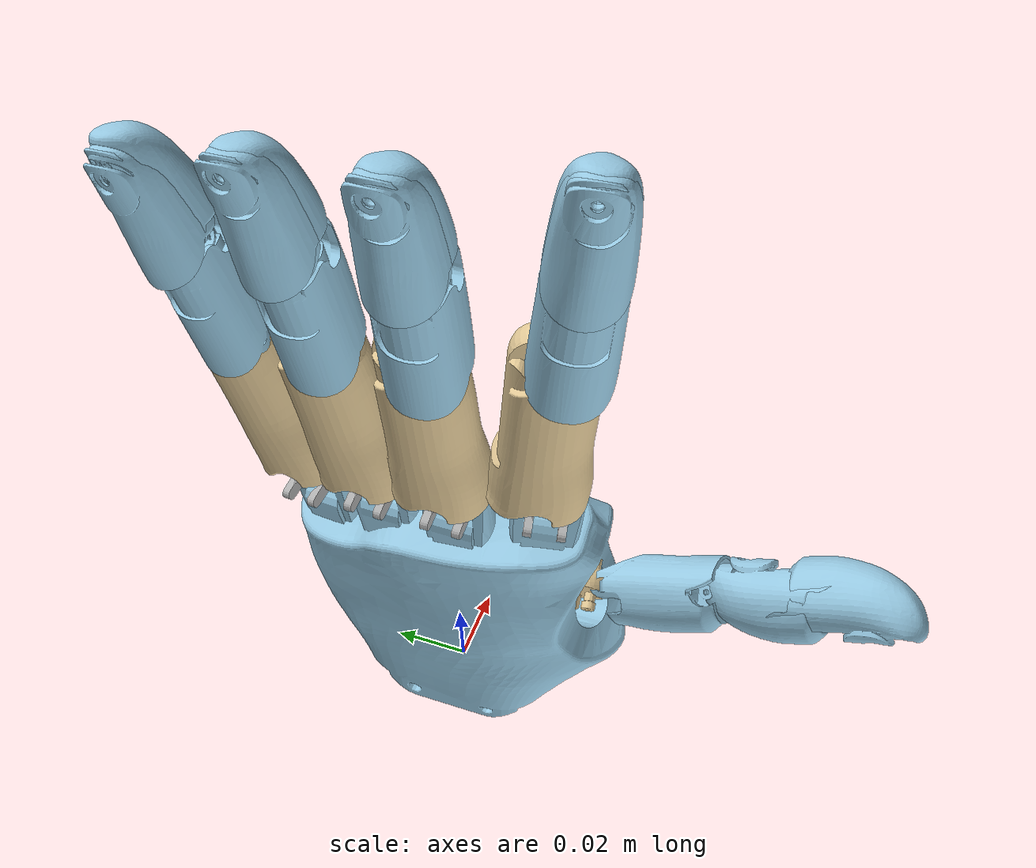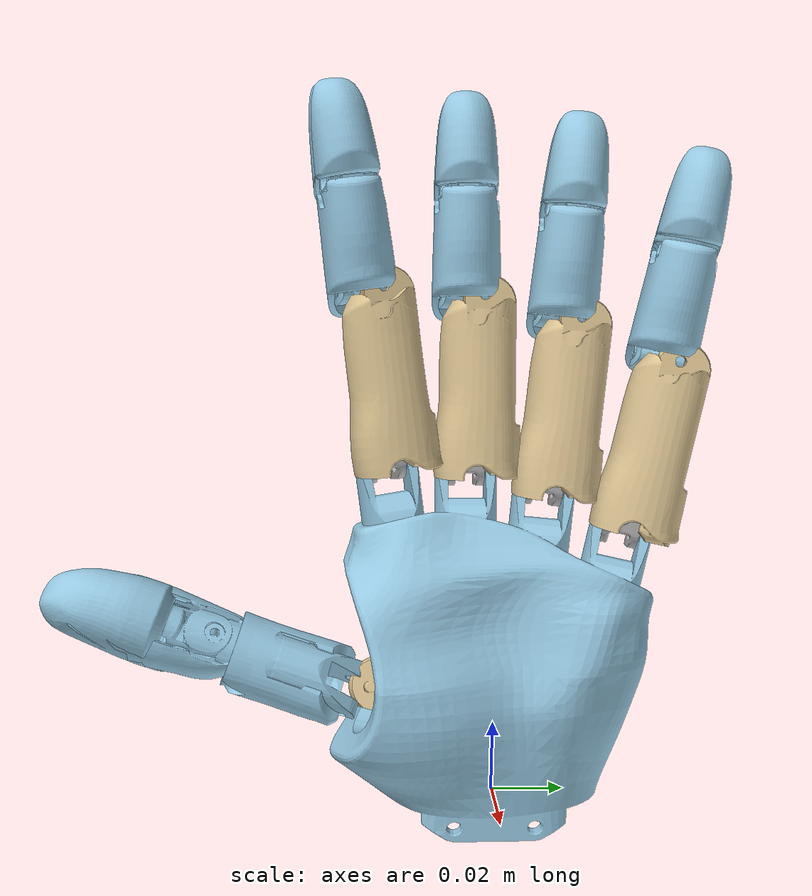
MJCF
<mujoco model="wujihand-left">
  <compiler angle="radian" meshdir="meshes/left/" />

  <option jacobian="sparse"
          integrator="RK4"
          timestep="0.002"
          solver="Newton"
          iterations="50"
          tolerance="1e-10"
          impratio="10"/>

  <default>
    <joint armature="0.005" damping="0.05" frictionloss="0.01"/>
  </default>
  <asset>
    <mesh name="left_palm_link" content_type="model/stl" file="left_palm_link.STL" />
    <mesh name="left_finger1_link1" content_type="model/stl" file="left_finger1_link1.STL" />
    <mesh name="left_finger1_link2" content_type="model/stl" file="left_finger1_link2.STL" />
    <mesh name="left_finger1_link3" content_type="model/stl" file="left_finger1_link3.STL" />
    <mesh name="left_finger1_link4" content_type="model/stl" file="left_finger1_link4.STL" />
    <mesh name="left_finger1_tip_link" content_type="model/stl" file="left_finger1_tip_link.STL" />
    <mesh name="left_finger2_link1" content_type="model/stl" file="left_finger2_link1.STL" />
    <mesh name="left_finger2_link2" content_type="model/stl" file="left_finger2_link2.STL" />
    <mesh name="left_finger2_link3" content_type="model/stl" file="left_finger2_link3.STL" />
    <mesh name="left_finger2_link4" content_type="model/stl" file="left_finger2_link4.STL" />
    <mesh name="left_finger2_tip_link" content_type="model/stl" file="left_finger2_tip_link.STL" />
    <mesh name="left_finger3_link1" content_type="model/stl" file="left_finger3_link1.STL" />
    <mesh name="left_finger3_link2" content_type="model/stl" file="left_finger3_link2.STL" />
    <mesh name="left_finger3_link3" content_type="model/stl" file="left_finger3_link3.STL" />
    <mesh name="left_finger3_link4" content_type="model/stl" file="left_finger3_link4.STL" />
    <mesh name="left_finger3_tip_link" content_type="model/stl" file="left_finger3_tip_link.STL" />
    <mesh name="left_finger4_link1" content_type="model/stl" file="left_finger4_link1.STL" />
    <mesh name="left_finger4_link2" content_type="model/stl" file="left_finger4_link2.STL" />
    <mesh name="left_finger4_link3" content_type="model/stl" file="left_finger4_link3.STL" />
    <mesh name="left_finger4_link4" content_type="model/stl" file="left_finger4_link4.STL" />
    <mesh name="left_finger4_tip_link" content_type="model/stl" file="left_finger4_tip_link.STL" />
    <mesh name="left_finger5_link1" content_type="model/stl" file="left_finger5_link1.STL" />
    <mesh name="left_finger5_link2" content_type="model/stl" file="left_finger5_link2.STL" />
    <mesh name="left_finger5_link3" content_type="model/stl" file="left_finger5_link3.STL" />
    <mesh name="left_finger5_link4" content_type="model/stl" file="left_finger5_link4.STL" />
    <mesh name="left_finger5_tip_link" content_type="model/stl" file="left_finger5_tip_link.STL" />
  </asset>

  <worldbody>
    <geom type="mesh" contype="0" conaffinity="0" group="1" density="0" rgba="0.6 0.8 0.9 1" mesh="left_palm_link" />
    <geom type="mesh" rgba="0.6 0.8 0.9 1" mesh="left_palm_link" contype="1" conaffinity="1" />
    <body name="left_finger1_link1" pos="0.00843985 -0.0205866 0.0288928" quat="0.157842 -0.148336 0.668565 0.711409">
      <inertial pos="-0.00312584 0.00124335 -0.00755623" quat="0.904243 0.21652 0.0443878 -0.365368" mass="0.0075" diaginertia="3.37599e-07 3.01198e-07 2.11203e-07" />
      <joint name="left_finger1_joint1" pos="0 0 0" axis="0 1 0" range="0.0583 1.5941" actuatorfrcrange="-0.4452 0.4452" />
      <geom type="mesh" contype="0" conaffinity="0" group="1" density="0" rgba="0.7 0.7 0.7 1" mesh="left_finger1_link1" />
      <geom type="mesh" rgba="0.7 0.7 0.7 1" mesh="left_finger1_link1" contype="0" conaffinity="0" />
      <body name="left_finger1_link2" pos="-0.0054483 0.0058191 -0.01388" quat="0.678684 0.174096 -0.067811 0.710268">
        <inertial pos="-0.00142783 1.46615e-05 -0.0156343" quat="0.815906 0.0024483 -0.00462559 0.57816" mass="0.0248" diaginertia="2.81725e-06 2.75299e-06 6.79766e-07" />
        <joint name="left_finger1_joint2" pos="0 0 0" axis="0 -1 0" range="-0.1199 0.9335" actuatorfrcrange="-0.4259 0.4259" />
        <geom type="mesh" contype="0" conaffinity="0" group="1" density="0" rgba="0.9 0.8 0.6 1" mesh="left_finger1_link2" />
        <geom type="mesh" rgba="0.9 0.8 0.6 1" mesh="left_finger1_link2" contype="2" conaffinity="2" />
        <body name="left_finger1_link3" pos="-0.000846961 0.000991504 -0.0346563" quat="0.577941 0.0144097 -0.0101665 -0.815888">
          <inertial pos="0.0011232 1.573e-05 -0.0130566" quat="0.999951 0 0.00989566 0" mass="0.0165" diaginertia="1.4604e-06 1.42e-06 4.49604e-07" />
          <joint name="left_finger1_joint3" pos="0 0 0" axis="0 1 0" range="-0.4646 1.5639" actuatorfrcrange="-0.1888 0.1888" />
          <geom type="mesh" contype="0" conaffinity="0" group="1" density="0" rgba="0.6 0.8 0.9 1" mesh="left_finger1_link3" />
          <geom type="mesh" rgba="0.6 0.8 0.9 1" mesh="left_finger1_link3" contype="1" conaffinity="1" />
          <body name="left_finger1_link4" pos="0 0 -0.0295">
            <inertial pos="0.00143098 2.14273e-05 -0.0111038" quat="0.706889 -0.0413139 -0.0421609 0.704858" mass="0.0206" diaginertia="2.46834e-06 2.44702e-06 7.6132e-07" />
            <joint name="left_finger1_joint4" pos="0 0 0" axis="0 1 0" range="-0.457 1.5684" actuatorfrcrange="-0.1468 0.1468" />
            <geom type="mesh" contype="0" conaffinity="0" group="1" density="0" rgba="0.6 0.8 0.9 1" mesh="left_finger1_link4" />
            <geom type="mesh" rgba="0.6 0.8 0.9 1" mesh="left_finger1_link4" contype="1" conaffinity="1" />
            <geom pos="0.00105 0 -0.0235" quat="0 0 -1 0" type="mesh" contype="0" conaffinity="0" group="1" density="0" rgba="0.6 0.8 0.9 1" mesh="left_finger1_tip_link" />
            <geom pos="0.00105 0 -0.0235" quat="0 0 -1 0" type="mesh" rgba="0.6 0.8 0.9 1" mesh="left_finger1_tip_link" contype="1" conaffinity="1" />
          </body>
        </body>
      </body>
    </body>
    <body name="left_finger2_link1" pos="-0.00587009 -0.0294339 0.0919165" quat="0.9921 0.056257 -0.00634791 0.111946">
      <inertial pos="-0.00134244 -5.65576e-09 0.000258175" quat="0.92388 0 0.382683 0" mass="0.0032" diaginertia="1.1e-07 7e-08 5e-08" />
      <joint name="left_finger2_joint1" pos="0 0 0" axis="0 1 0" range="-0.156 1.5619" actuatorfrcrange="-0.6188 0.6188" />
      <geom type="mesh" contype="0" conaffinity="0" group="1" density="0" rgba="0.7 0.7 0.7 1" mesh="left_finger2_link1" />
      <geom type="mesh" rgba="0.7 0.7 0.7 1" mesh="left_finger2_link1" contype="0" conaffinity="0" />
      <body name="left_finger2_link2" pos="0.00038954 0 0.0040223" quat="0.999733 0 -0.0231118 0">
        <inertial pos="-0.00453252 4.38298e-07 0.020911" quat="0.70703 0.0104245 0.0104245 0.70703" mass="0.033" diaginertia="6.34e-06 6.31472e-06 8.85281e-07" />
        <joint name="left_finger2_joint2" pos="0 0 0" axis="-1 0 0" range="-0.4095 0.2921" actuatorfrcrange="-0.1822 0.1822" />
        <geom type="mesh" contype="0" conaffinity="0" group="1" density="0" rgba="0.9 0.8 0.6 1" mesh="left_finger2_link2" />
        <geom type="mesh" rgba="0.9 0.8 0.6 1" mesh="left_finger2_link2" contype="2" conaffinity="2" />
        <body name="left_finger2_link3" pos="-0.00312503 0.000100282 0.0436177" quat="1 0 0 0.000134306">
          <inertial pos="-0.00112187 -6.72383e-05 0.0157188" quat="0.999892 0 -0.0146884 0" mass="0.0165" diaginertia="1.47088e-06 1.44e-06 4.49118e-07" />
          <joint name="left_finger2_joint3" pos="0 0 0" axis="0 1 0" range="-0.4839 1.5466" actuatorfrcrange="-0.2251 0.2251" />
          <geom type="mesh" contype="0" conaffinity="0" group="1" density="0" rgba="0.6 0.8 0.9 1" mesh="left_finger2_link3" />
          <geom type="mesh" rgba="0.6 0.8 0.9 1" mesh="left_finger2_link3" contype="1" conaffinity="1" />
          <body name="left_finger2_link4" pos="0 0 0.0295">
            <inertial pos="-0.000577493 -0.000439345 0.0077094" quat="0.996472 0.0222479 -0.0379654 0.0714678" mass="0.01718" diaginertia="1.58791e-06 1.49887e-06 4.38452e-07" />
            <joint name="left_finger2_joint4" pos="0 0 0" axis="0 1 0" range="-0.4723 1.5754" actuatorfrcrange="-0.217 0.217" />
            <geom type="mesh" contype="0" conaffinity="0" group="1" density="0" rgba="0.6 0.8 0.9 1" mesh="left_finger2_link4" />
            <geom type="mesh" rgba="0.6 0.8 0.9 1" mesh="left_finger2_link4" contype="1" conaffinity="1" />
            <geom pos="-0.002 -0.0001 0.0239466" type="mesh" contype="0" conaffinity="0" group="1" density="0" rgba="0.6 0.8 0.9 1" mesh="left_finger2_tip_link" />
            <geom pos="-0.002 -0.0001 0.0239466" type="mesh" rgba="0.6 0.8 0.9 1" mesh="left_finger2_tip_link" contype="1" conaffinity="1" />
          </body>
        </body>
      </body>
    </body>
    <body name="left_finger3_link1" pos="-0.01046 -0.0074615 0.089544" quat="1 2.53465e-05 -7.34339e-09 -0.00028972">
      <inertial pos="-0.0013519 -1.49581e-08 0.000202846" quat="0.92388 0 0.382683 0" mass="0.0032" diaginertia="1.1e-07 7e-08 5e-08" />
      <joint name="left_finger3_joint1" pos="0 0 0" axis="0 1 0" range="-0.1569 1.5536" actuatorfrcrange="-0.6494 0.6494" />
      <geom type="mesh" contype="0" conaffinity="0" group="1" density="0" rgba="0.7 0.7 0.7 1" mesh="left_finger3_link1" />
      <geom type="mesh" rgba="0.7 0.7 0.7 1" mesh="left_finger3_link1" contype="0" conaffinity="0" />
      <body name="left_finger3_link2" pos="0.000224189 0 0.0040349" quat="0.999048 0 -0.0436194 0">
        <inertial pos="-0.0063378 3.07421e-06 0.0204364" quat="0.70703 0.0104245 0.0104245 0.70703" mass="0.033" diaginertia="6.34e-06 6.31472e-06 8.85281e-07" />
        <joint name="left_finger3_joint2" pos="0 0 0" axis="-1 0 0" range="-0.3977 0.3115" actuatorfrcrange="-0.1827 0.1827" />
        <geom type="mesh" contype="0" conaffinity="0" group="1" density="0" rgba="0.9 0.8 0.6 1" mesh="left_finger3_link2" />
        <geom type="mesh" rgba="0.9 0.8 0.6 1" mesh="left_finger3_link2" contype="2" conaffinity="2" />
        <body name="left_finger3_link3" pos="-0.00312503 0.000100283 0.0436177" quat="1 0 0 0.000134306">
          <inertial pos="-0.00112187 -6.72196e-05 0.0157188" quat="0.999892 0 -0.0146884 0" mass="0.0165" diaginertia="1.47088e-06 1.44e-06 4.49118e-07" />
          <joint name="left_finger3_joint3" pos="0 0 0" axis="0 1 0" range="-0.4847 1.5411" actuatorfrcrange="-0.2078 0.2078" />
          <geom type="mesh" contype="0" conaffinity="0" group="1" density="0" rgba="0.6 0.8 0.9 1" mesh="left_finger3_link3" />
          <geom type="mesh" rgba="0.6 0.8 0.9 1" mesh="left_finger3_link3" contype="1" conaffinity="1" />
          <body name="left_finger3_link4" pos="0 0 0.0295">
            <inertial pos="-0.000569212 -0.000437935 0.00770941" quat="0.99642 0.0221379 -0.0373581 0.0725293" mass="0.01718" diaginertia="1.58767e-06 1.49921e-06 4.39012e-07" />
            <joint name="left_finger3_joint4" pos="0 0 0" axis="0 1 0" range="-0.4671 1.5788" actuatorfrcrange="-0.2018 0.2018" />
            <geom type="mesh" contype="0" conaffinity="0" group="1" density="0" rgba="0.6 0.8 0.9 1" mesh="left_finger3_link4" />
            <geom type="mesh" rgba="0.6 0.8 0.9 1" mesh="left_finger3_link4" contype="1" conaffinity="1" />
            <geom pos="-0.002 -0.0001 0.0239466" type="mesh" contype="0" conaffinity="0" group="1" density="0" rgba="0.6 0.8 0.9 1" mesh="left_finger3_tip_link" />
            <geom pos="-0.002 -0.0001 0.0239466" type="mesh" rgba="0.6 0.8 0.9 1" mesh="left_finger3_tip_link" contype="1" conaffinity="1" />
          </body>
        </body>
      </body>
    </body>
    <body name="left_finger4_link1" pos="-0.0076649 0.013712 0.084429" quat="0.998613 -0.0449975 0.00123051 -0.0273084">
      <inertial pos="-0.00135119 -9.65326e-09 0.000207529" quat="0.92388 0 0.382683 0" mass="0.0032" diaginertia="1.1e-07 7e-08 5e-08" />
      <joint name="left_finger4_joint1" pos="0 0 0" axis="0 1 0" range="-0.1507 1.5636" actuatorfrcrange="-0.6389 0.6389" />
      <geom type="mesh" contype="0" conaffinity="0" group="1" density="0" rgba="0.7 0.7 0.7 1" mesh="left_finger4_link1" />
      <geom type="mesh" rgba="0.7 0.7 0.7 1" mesh="left_finger4_link1" contype="0" conaffinity="0" />
      <body name="left_finger4_link2" pos="0.000238272 0 0.00403409" quat="0.999123 0 -0.0418757 0">
        <inertial pos="-0.00452747 0.000214165 0.020911" quat="0.70703 0.0104245 0.0104245 0.70703" mass="0.033" diaginertia="6.34e-06 6.31472e-06 8.85281e-07" />
        <joint name="left_finger4_joint2" pos="0 0 0" axis="-1 0 0" range="-0.4101 0.3014" actuatorfrcrange="-0.1832 0.1832" />
        <geom type="mesh" contype="0" conaffinity="0" group="1" density="0" rgba="0.9 0.8 0.6 1" mesh="left_finger4_link2" />
        <geom type="mesh" rgba="0.9 0.8 0.6 1" mesh="left_finger4_link2" contype="2" conaffinity="2" />
        <body name="left_finger4_link3" pos="-0.00312503 0.000100282 0.0436177" quat="1 0 0 0.000134312">
          <inertial pos="-0.00112188 -6.72061e-05 0.0157188" quat="0.999892 0 -0.0146884 0" mass="0.0165" diaginertia="1.47088e-06 1.44e-06 4.49118e-07" />
          <joint name="left_finger4_joint3" pos="0 0 0" axis="0 1 0" range="-0.4747 1.5526" actuatorfrcrange="-0.2249 0.2249" />
          <geom type="mesh" contype="0" conaffinity="0" group="1" density="0" rgba="0.6 0.8 0.9 1" mesh="left_finger4_link3" />
          <geom type="mesh" rgba="0.6 0.8 0.9 1" mesh="left_finger4_link3" contype="1" conaffinity="1" />
          <body name="left_finger4_link4" pos="0 0 0.0295">
            <inertial pos="-0.000569623 -0.000441093 0.00770942" quat="0.996378 0.022381 -0.0374127 0.0730138" mass="0.01718" diaginertia="1.58788e-06 1.49922e-06 4.39096e-07" />
            <joint name="left_finger4_joint4" pos="0 0 0" axis="0 1 0" range="-0.4729 1.5718" actuatorfrcrange="-0.2044 0.2044" />
            <geom type="mesh" contype="0" conaffinity="0" group="1" density="0" rgba="0.6 0.8 0.9 1" mesh="left_finger4_link4" />
            <geom type="mesh" rgba="0.6 0.8 0.9 1" mesh="left_finger4_link4" contype="1" conaffinity="1" />
            <geom pos="-0.002 -0.0001 0.0239466" type="mesh" contype="0" conaffinity="0" group="1" density="0" rgba="0.6 0.8 0.9 1" mesh="left_finger4_tip_link" />
            <geom pos="-0.002 -0.0001 0.0239466" type="mesh" rgba="0.6 0.8 0.9 1" mesh="left_finger4_tip_link" contype="1" conaffinity="1" />
          </body>
        </body>
      </body>
    </body>
    <body name="left_finger5_link1" pos="-0.00226865 0.0340011 0.0742813" quat="0.991575 -0.0953097 0.00839343 -0.0873229">
      <inertial pos="-0.00135329 -2.35789e-08 0.000193347" quat="0.92388 0 0.382683 0" mass="0.0032" diaginertia="1.1e-07 7e-08 5e-08" />
      <joint name="left_finger5_joint1" pos="0 0 0" axis="0 1 0" range="-0.1578 1.5632" actuatorfrcrange="-0.6441 0.6441" />
      <geom type="mesh" contype="0" conaffinity="0" group="1" density="0" rgba="0.7 0.7 0.7 1" mesh="left_finger5_link1" />
      <geom type="mesh" rgba="0.7 0.7 0.7 1" mesh="left_finger5_link1" contype="0" conaffinity="0" />
      <body name="left_finger5_link2" pos="0.000196015 0 0.00403637" quat="0.99889 0 -0.0471065 0">
        <inertial pos="-0.00453253 4.36745e-07 0.020911" quat="0.70703 0.0104245 0.0104245 0.70703" mass="0.033" diaginertia="6.34e-06 6.31472e-06 8.85281e-07" />
        <joint name="left_finger5_joint2" pos="0 0 0" axis="-1 0 0" range="-0.4103 0.2949" actuatorfrcrange="-0.1798 0.1798" />
        <geom type="mesh" contype="0" conaffinity="0" group="1" density="0" rgba="0.9 0.8 0.6 1" mesh="left_finger5_link2" />
        <geom type="mesh" rgba="0.9 0.8 0.6 1" mesh="left_finger5_link2" contype="2" conaffinity="2" />
        <body name="left_finger5_link3" pos="-0.00312503 0.000100283 0.0436177" quat="1 0 0 0.000134306">
          <inertial pos="-0.00112188 -6.71933e-05 0.0157188" quat="0.999892 0 -0.0146884 0" mass="0.0165" diaginertia="1.47088e-06 1.44e-06 4.49118e-07" />
          <joint name="left_finger5_joint3" pos="0 0 0" axis="0 1 0" range="-0.4733 1.556" actuatorfrcrange="-0.2384 0.2384" />
          <geom type="mesh" contype="0" conaffinity="0" group="1" density="0" rgba="0.6 0.8 0.9 1" mesh="left_finger5_link3" />
          <geom type="mesh" rgba="0.6 0.8 0.9 1" mesh="left_finger5_link3" contype="1" conaffinity="1" />
          <body name="left_finger5_link4" pos="0 0 0.0295">
            <inertial pos="-0.000572786 -0.000437032 0.00770942" quat="0.996465 0.0220675 -0.0376073 0.0718051" mass="0.01718" diaginertia="1.58768e-06 1.49906e-06 4.38715e-07" />
            <joint name="left_finger5_joint4" pos="0 0 0" axis="0 1 0" range="-0.4662 1.576" actuatorfrcrange="-0.1866 0.1866" />
            <geom type="mesh" contype="0" conaffinity="0" group="1" density="0" rgba="0.6 0.8 0.9 1" mesh="left_finger5_link4" />
            <geom type="mesh" rgba="0.6 0.8 0.9 1" mesh="left_finger5_link4" contype="1" conaffinity="1" />
            <geom pos="-0.002 -0.0001 0.0239466" type="mesh" contype="0" conaffinity="0" group="1" density="0" rgba="0.6 0.8 0.9 1" mesh="left_finger5_tip_link" />
            <geom pos="-0.002 -0.0001 0.0239466" type="mesh" rgba="0.6 0.8 0.9 1" mesh="left_finger5_tip_link" contype="1" conaffinity="1" />
          </body>
        </body>
      </body>
    </body>
  </worldbody>
  <actuator>
    <position name="left_finger1_joint1_actuator" joint="left_finger1_joint1" kp="0.5" ctrlrange="0.0583 1.5941" forcerange="-0.4452 0.4452" />
    <position name="left_finger1_joint2_actuator" joint="left_finger1_joint2" kp="0.5" ctrlrange="-0.1199 0.9335" forcerange="-0.4259 0.4259" />
    <position name="left_finger1_joint3_actuator" joint="left_finger1_joint3" kp="0.5" ctrlrange="-0.4646 1.5639" forcerange="-0.1888 0.1888" />
    <position name="left_finger1_joint4_actuator" joint="left_finger1_joint4" kp="0.5" ctrlrange="-0.457 1.5684" forcerange="-0.1468 0.1468" />
    <position name="left_finger2_joint1_actuator" joint="left_finger2_joint1" kp="0.5" ctrlrange="-0.156 1.5619" forcerange="-0.6188 0.6188" />
    <position name="left_finger2_joint2_actuator" joint="left_finger2_joint2" kp="0.5" ctrlrange="-0.4095 0.2921" forcerange="-0.1822 0.1822" />
    <position name="left_finger2_joint3_actuator" joint="left_finger2_joint3" kp="0.5" ctrlrange="-0.4839 1.5466" forcerange="-0.2251 0.2251" />
    <position name="left_finger2_joint4_actuator" joint="left_finger2_joint4" kp="0.5" ctrlrange="-0.4723 1.5754" forcerange="-0.217 0.217" />
    <position name="left_finger3_joint1_actuator" joint="left_finger3_joint1" kp="0.5" ctrlrange="-0.1569 1.5536" forcerange="-0.6494 0.6494" />
    <position name="left_finger3_joint2_actuator" joint="left_finger3_joint2" kp="0.5" ctrlrange="-0.3977 0.3115" forcerange="-0.1827 0.1827" />
    <position name="left_finger3_joint3_actuator" joint="left_finger3_joint3" kp="0.5" ctrlrange="-0.4847 1.5411" forcerange="-0.2078 0.2078" />
    <position name="left_finger3_joint4_actuator" joint="left_finger3_joint4" kp="0.5" ctrlrange="-0.4671 1.5788" forcerange="-0.2018 0.2018" />
    <position name="left_finger4_joint1_actuator" joint="left_finger4_joint1" kp="0.5" ctrlrange="-0.1507 1.5636" forcerange="-0.6389 0.6389" />
    <position name="left_finger4_joint2_actuator" joint="left_finger4_joint2" kp="0.5" ctrlrange="-0.4101 0.3014" forcerange="-0.1832 0.1832" />
    <position name="left_finger4_joint3_actuator" joint="left_finger4_joint3" kp="0.5" ctrlrange="-0.4747 1.5526" forcerange="-0.2249 0.2249" />
    <position name="left_finger4_joint4_actuator" joint="left_finger4_joint4" kp="0.5" ctrlrange="-0.4729 1.5718" forcerange="-0.2044 0.2044" />
    <position name="left_finger5_joint1_actuator" joint="left_finger5_joint1" kp="0.5" ctrlrange="-0.1578 1.5632" forcerange="-0.6441 0.6441" />
    <position name="left_finger5_joint2_actuator" joint="left_finger5_joint2" kp="0.5" ctrlrange="-0.4103 0.2949" forcerange="-0.1798 0.1798" />
    <position name="left_finger5_joint3_actuator" joint="left_finger5_joint3" kp="0.5" ctrlrange="-0.4733 1.556" forcerange="-0.2384 0.2384" />
    <position name="left_finger5_joint4_actuator" joint="left_finger5_joint4" kp="0.5" ctrlrange="-0.4662 1.576" forcerange="-0.1866 0.1866" />
  </actuator>
</mujoco>
